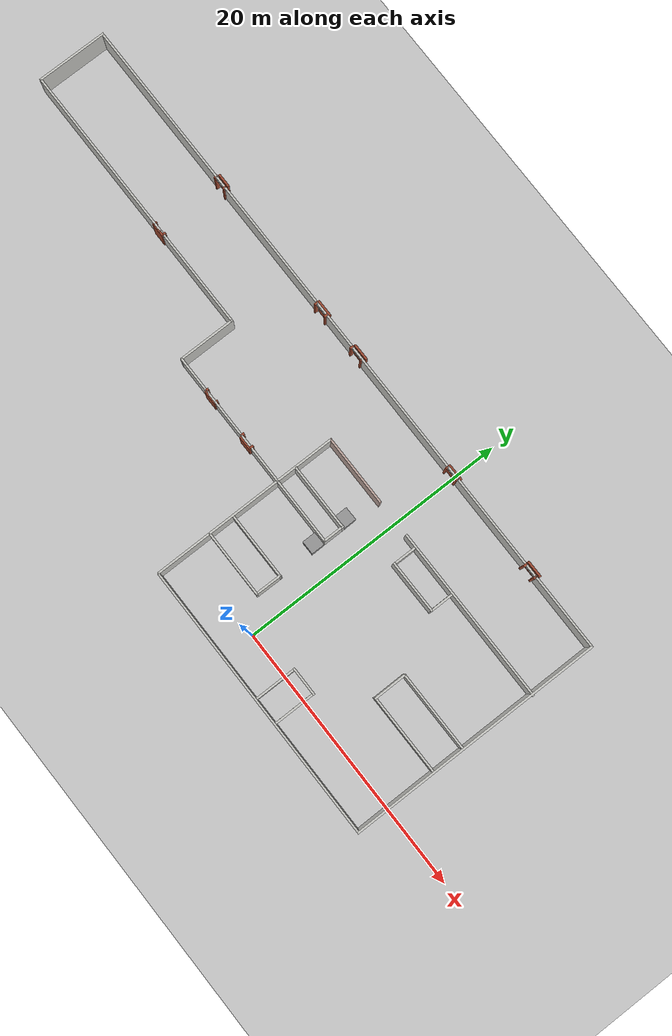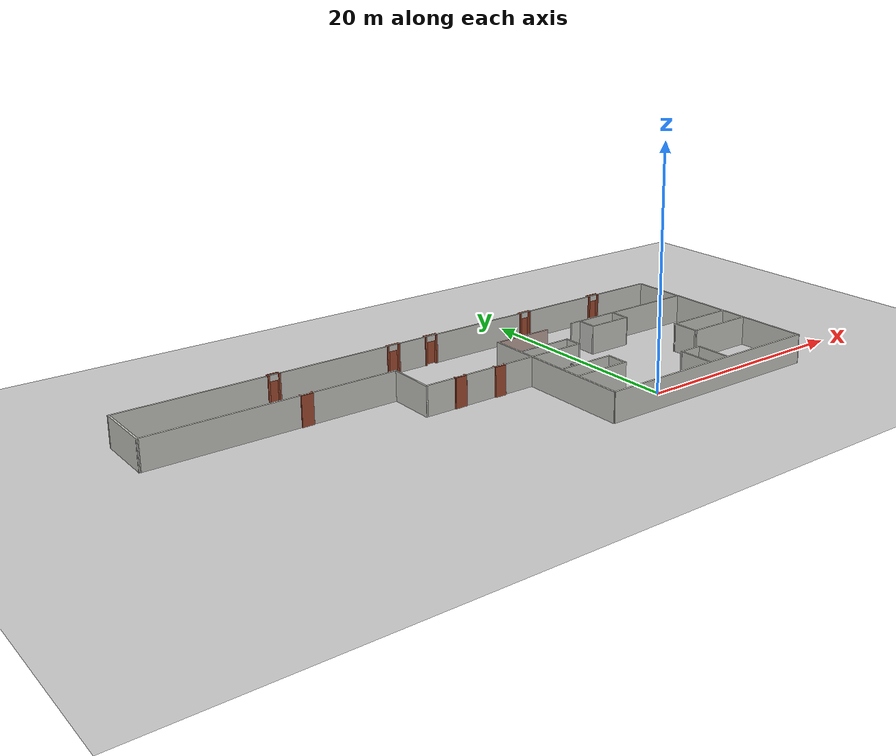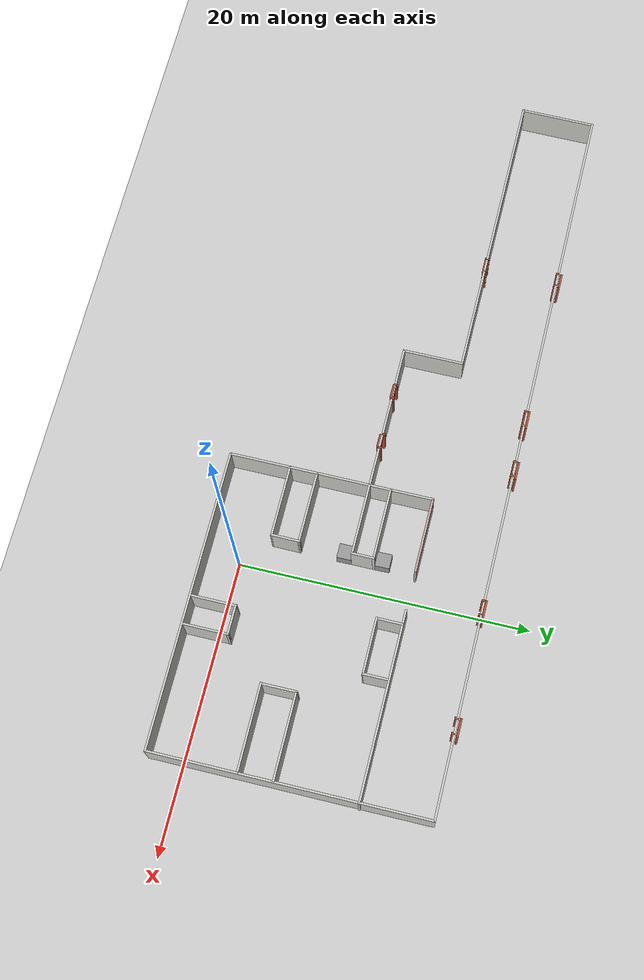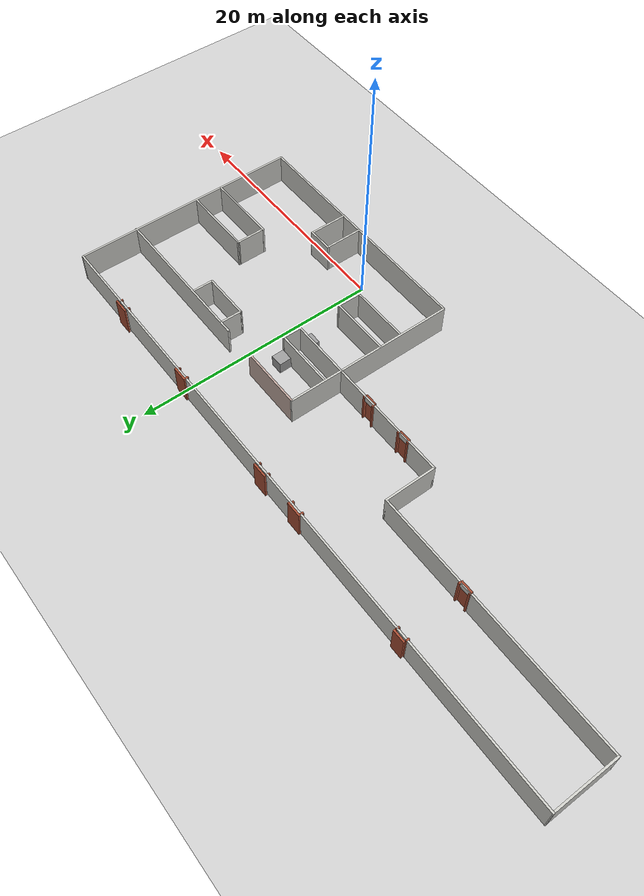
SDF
<sdf version="1.6">
 <world name="default">
  <light name="sun" type="directional">
   <pose>0 0 10 0 -0 0</pose>
   <diffuse>0.8 0.8 0.8 1</diffuse>
   <specular>0.1 0.1 0.1 1</specular>
   <attenuation>
    <range>1000</range>
    <constant>0.9</constant>
    <linear>0.01</linear>
    <quadratic>0.001</quadratic>
   </attenuation>
   <direction>-0.5 0.5 -1</direction>
  </light>
  <model name="ground_plane">
   <static>1</static>
   <link name="link">
    <collision name="collision">
     <geometry><plane><normal>0 0 1</normal><size>100 100</size></plane></geometry>
     <surface><friction><ode><mu>100</mu><mu2>50</mu2></ode></friction></surface>
    </collision>
    <visual name="visual">
     <cast_shadows>0</cast_shadows>
     <geometry><plane><normal>0 0 1</normal><size>100 100</size></plane></geometry>
     <material>
      <script><uri>file://media/materials/scripts/gazebo.material</uri><name>Gazebo/Grey</name></script>
     </material>
    </visual>
   </link>
  </model>
  <gravity>0 0 -9.8</gravity>
  <magnetic_field>6e-06 2.3e-05 -4.2e-05</magnetic_field>
  <atmosphere type="adiabatic"/>
  <physics name="default_physics" default="0" type="ode">
   <max_step_size>0.001</max_step_size>
   <real_time_factor>1</real_time_factor>
   <real_time_update_rate>1000</real_time_update_rate>
  </physics>
  <scene><ambient>0.4 0.4 0.4 1</ambient><background>0.7 0.7 0.7 1</background><shadows>1</shadows></scene>
  <spherical_coordinates>
   <surface_model>EARTH_WGS84</surface_model>
   <latitude_deg>0</latitude_deg>
   <longitude_deg>0</longitude_deg>
   <elevation>0</elevation>
   <heading_deg>0</heading_deg>
  </spherical_coordinates>
  <model name="Koridor2">
   <pose>-11.7102 7.16649 0 0 -0 0</pose>
   <link name="Wall_0">
    <collision name="Wall_0_Collision">
     <geometry><box><size>20.7196 0.15 2.5</size></box></geometry>
     <pose>0 0 1.25 0 -0 0</pose>
    </collision>
    <visual name="Wall_0_Visual">
     <pose>0 0 1.25 0 -0 0</pose>
     <geometry><box><size>20.7196 0.15 2.5</size></box></geometry>
     <material>
      <script><uri>file://media/materials/scripts/gazebo.material</uri><name>Gazebo/CeilingTiled</name></script>
      <ambient>0.760784 0.662745 0.627451 1</ambient>
     </material>
    </visual>
    <pose>15.3339 -9.42948 0 0 -0 0</pose>
   </link>
   <link name="Wall_1">
    <collision name="Wall_1_Collision">
     <geometry><box><size>19 0.15 2.5</size></box></geometry>
     <pose>0 0 1.25 0 -0 0</pose>
    </collision>
    <visual name="Wall_1_Visual">
     <pose>0 0 1.25 0 -0 0</pose>
     <geometry><box><size>19 0.15 2.5</size></box></geometry>
     <material>
      <script><uri>file://media/materials/scripts/gazebo.material</uri><name>Gazebo/CeilingTiled</name></script>
      <ambient>0.760784 0.662745 0.627451 1</ambient>
     </material>
    </visual>
    <pose>25.649 -0.004479 0 0 -0 1.56919</pose>
   </link>
   <link name="Wall_15">
    <collision name="Wall_15_Collision">
     <geometry><box><size>5.25 0.15 2.5</size></box></geometry>
     <pose>0 0 1.25 0 -0 0</pose>
    </collision>
    <visual name="Wall_15_Visual">
     <pose>0 0 1.25 0 -0 0</pose>
     <geometry><box><size>5.25 0.15 2.5</size></box></geometry>
     <material>
      <script><uri>file://media/materials/scripts/gazebo.material</uri><name>Gazebo/Grey</name></script>
      <ambient>0.760784 0.662745 0.627451 1</ambient>
     </material>
    </visual>
    <pose>7.53392 4.57052 0 0 -0 0</pose>
   </link>
   <link name="Wall_17">
    <collision name="Wall_17_Collision">
     <geometry><box><size>13 0.15 2.5</size></box></geometry>
     <pose>0 0 1.25 0 -0 0</pose>
    </collision>
    <visual name="Wall_17_Visual">
     <pose>0 0 1.25 0 -0 0</pose>
     <geometry><box><size>13 0.15 2.5</size></box></geometry>
     <material>
      <script><uri>file://media/materials/scripts/gazebo.material</uri><name>Gazebo/CeilingTiled</name></script>
      <ambient>0.760784 0.662745 0.627451 1</ambient>
     </material>
    </visual>
    <pose>19.2915 4.57081 0 0 -0 0</pose>
   </link>
   <link name="Wall_26">
    <collision name="Wall_26_Collision">
     <geometry><box><size>2.51711 0.15 2.5</size></box></geometry>
     <pose>0 0 1.25 0 -0 0</pose>
    </collision>
    <visual name="Wall_26_Visual">
     <pose>0 0 1.25 0 -0 0</pose>
     <geometry><box><size>2.51711 0.15 2.5</size></box></geometry>
     <material>
      <script><uri>file://media/materials/scripts/gazebo.material</uri><name>Gazebo/CeilingTiled</name></script>
      <ambient>0.760784 0.662745 0.627451 1</ambient>
     </material>
    </visual>
    <pose>19.7361 -2.22038 0 0 0 -1.56573</pose>
   </link>
   <link name="Wall_27">
    <collision name="Wall_27_Collision">
     <geometry><box><size>6.00761 0.15 2.5</size></box></geometry>
     <pose>0 0 1.25 0 -0 0</pose>
    </collision>
    <visual name="Wall_27_Visual">
     <pose>0 0 1.25 0 -0 0</pose>
     <geometry><box><size>6.00761 0.15 2.5</size></box></geometry>
     <material>
      <script><uri>file://media/materials/scripts/gazebo.material</uri><name>Gazebo/CeilingTiled</name></script>
      <ambient>0.760784 0.662745 0.627451 1</ambient>
     </material>
    </visual>
    <pose>22.6558 -3.39376 0 0 -0 0.003434</pose>
   </link>
   <link name="Wall_29">
    <collision name="Wall_29_Collision">
     <geometry><box><size>5.99493 0.15 2.5</size></box></geometry>
     <pose>0 0 1.25 0 -0 0</pose>
    </collision>
    <visual name="Wall_29_Visual">
     <pose>0 0 1.25 0 -0 0</pose>
     <geometry><box><size>5.99493 0.15 2.5</size></box></geometry>
     <material>
      <script><uri>file://media/materials/scripts/gazebo.material</uri><name>Gazebo/CeilingTiled</name></script>
      <ambient>0.760784 0.662745 0.627451 1</ambient>
     </material>
    </visual>
    <pose>22.6526 -1.03445 0 0 -0 0.003441</pose>
   </link>
   <link name="Wall_3">
    <pose>-0.018397 9.42052 0 0 -0 3.14159</pose>
    <visual name="Wall_3_Visual_0">
     <pose>-22.8751 0 1.25 0 -0 0</pose>
     <geometry><box><size>5.74983 0.15 2.5</size></box></geometry>
     <material>
      <script><uri>file://media/materials/scripts/gazebo.material</uri><name>Gazebo/CeilingTiled</name></script>
      <ambient>0.760784 0.662745 0.627451 1</ambient>
     </material>
    </visual>
    <collision name="Wall_3_Collision_0">
     <geometry><box><size>5.74983 0.15 2.5</size></box></geometry>
     <pose>-22.8751 0 1.25 0 -0 0</pose>
    </collision>
    <visual name="Wall_3_Visual_1">
     <pose>-15.5617 0 1.25 0 -0 0</pose>
     <geometry><box><size>7.07695 0.15 2.5</size></box></geometry>
     <material>
      <script><uri>file://media/materials/scripts/gazebo.material</uri><name>Gazebo/CeilingTiled</name></script>
      <ambient>0.760784 0.662745 0.627451 1</ambient>
     </material>
    </visual>
    <collision name="Wall_3_Collision_1">
     <geometry><box><size>7.07695 0.15 2.5</size></box></geometry>
     <pose>-15.5617 0 1.25 0 -0 0</pose>
    </collision>
    <visual name="Wall_3_Visual_2">
     <pose>-6.5969 0 1.25 0 -0 0</pose>
     <geometry><box><size>9.05265 0.15 2.5</size></box></geometry>
     <material>
      <script><uri>file://media/materials/scripts/gazebo.material</uri><name>Gazebo/CeilingTiled</name></script>
      <ambient>0.760784 0.662745 0.627451 1</ambient>
     </material>
    </visual>
    <collision name="Wall_3_Collision_2">
     <geometry><box><size>9.05265 0.15 2.5</size></box></geometry>
     <pose>-6.5969 0 1.25 0 -0 0</pose>
    </collision>
    <visual name="Wall_3_Visual_3">
     <pose>0.23502 0 1.25 0 -0 0</pose>
     <geometry><box><size>2.81118 0.15 2.5</size></box></geometry>
     <material>
      <script><uri>file://media/materials/scripts/gazebo.material</uri><name>Gazebo/CeilingTiled</name></script>
      <ambient>0.760784 0.662745 0.627451 1</ambient>
     </material>
    </visual>
    <collision name="Wall_3_Collision_3">
     <geometry><box><size>2.81118 0.15 2.5</size></box></geometry>
     <pose>0.23502 0 1.25 0 -0 0</pose>
    </collision>
    <visual name="Wall_3_Visual_4">
     <pose>7.47628 0 1.25 0 -0 0</pose>
     <geometry><box><size>9.87134 0.15 2.5</size></box></geometry>
     <material>
      <script><uri>file://media/materials/scripts/gazebo.material</uri><name>Gazebo/CeilingTiled</name></script>
      <ambient>0.760784 0.662745 0.627451 1</ambient>
     </material>
    </visual>
    <collision name="Wall_3_Collision_4">
     <geometry><box><size>9.87134 0.15 2.5</size></box></geometry>
     <pose>7.47628 0 1.25 0 -0 0</pose>
    </collision>
    <visual name="Wall_3_Visual_5">
     <pose>19.531 0 1.25 0 -0 0</pose>
     <geometry><box><size>12.4381 0.15 2.5</size></box></geometry>
     <material>
      <script><uri>file://media/materials/scripts/gazebo.material</uri><name>Gazebo/CeilingTiled</name></script>
      <ambient>0.760784 0.662745 0.627451 1</ambient>
     </material>
    </visual>
    <collision name="Wall_3_Collision_5">
     <geometry><box><size>12.4381 0.15 2.5</size></box></geometry>
     <pose>19.531 0 1.25 0 -0 0</pose>
    </collision>
    <visual name="Wall_3_Visual_6">
     <pose>-19.5502 0 2.25 0 -0 0</pose>
     <geometry><box><size>0.9 0.15 0.5</size></box></geometry>
     <material>
      <script><uri>file://media/materials/scripts/gazebo.material</uri><name>Gazebo/CeilingTiled</name></script>
      <ambient>0.760784 0.662745 0.627451 1</ambient>
     </material>
    </visual>
    <collision name="Wall_3_Collision_6">
     <geometry><box><size>0.9 0.15 0.5</size></box></geometry>
     <pose>-19.5502 0 2.25 0 -0 0</pose>
    </collision>
    <visual name="Wall_3_Visual_7">
     <pose>-11.5732 0 2.25 0 -0 0</pose>
     <geometry><box><size>0.9 0.15 0.5</size></box></geometry>
     <material>
      <script><uri>file://media/materials/scripts/gazebo.material</uri><name>Gazebo/CeilingTiled</name></script>
      <ambient>0.760784 0.662745 0.627451 1</ambient>
     </material>
    </visual>
    <collision name="Wall_3_Collision_7">
     <geometry><box><size>0.9 0.15 0.5</size></box></geometry>
     <pose>-11.5732 0 2.25 0 -0 0</pose>
    </collision>
    <visual name="Wall_3_Visual_8">
     <pose>-1.62057 0 2.25 0 -0 0</pose>
     <geometry><box><size>0.9 0.15 0.5</size></box></geometry>
     <material>
      <script><uri>file://media/materials/scripts/gazebo.material</uri><name>Gazebo/CeilingTiled</name></script>
      <ambient>0.760784 0.662745 0.627451 1</ambient>
     </material>
    </visual>
    <collision name="Wall_3_Collision_8">
     <geometry><box><size>0.9 0.15 0.5</size></box></geometry>
     <pose>-1.62057 0 2.25 0 -0 0</pose>
    </collision>
    <visual name="Wall_3_Visual_9">
     <pose>2.09061 0 2.25 0 -0 0</pose>
     <geometry><box><size>0.9 0.15 0.5</size></box></geometry>
     <material>
      <script><uri>file://media/materials/scripts/gazebo.material</uri><name>Gazebo/CeilingTiled</name></script>
      <ambient>0.760784 0.662745 0.627451 1</ambient>
     </material>
    </visual>
    <collision name="Wall_3_Collision_9">
     <geometry><box><size>0.9 0.15 0.5</size></box></geometry>
     <pose>2.09061 0 2.25 0 -0 0</pose>
    </collision>
    <visual name="Wall_3_Visual_10">
     <pose>12.8619 0 2.25 0 -0 0</pose>
     <geometry><box><size>0.9 0.15 0.5</size></box></geometry>
     <material>
      <script><uri>file://media/materials/scripts/gazebo.material</uri><name>Gazebo/CeilingTiled</name></script>
      <ambient>0.760784 0.662745 0.627451 1</ambient>
     </material>
    </visual>
    <collision name="Wall_3_Collision_10">
     <geometry><box><size>0.9 0.15 0.5</size></box></geometry>
     <pose>12.8619 0 2.25 0 -0 0</pose>
    </collision>
   </link>
   <link name="Wall_31">
    <collision name="Wall_31_Collision">
     <geometry><box><size>3.25 0.15 2.5</size></box></geometry>
     <pose>0 0 1.25 0 -0 0</pose>
    </collision>
    <visual name="Wall_31_Visual">
     <pose>0 0 1.25 0 -0 0</pose>
     <geometry><box><size>3.25 0.15 2.5</size></box></geometry>
     <material>
      <script><uri>file://media/materials/scripts/gazebo.material</uri><name>Gazebo/CeilingTiled</name></script>
      <ambient>0.760784 0.662745 0.627451 1</ambient>
     </material>
    </visual>
    <pose>15.1282 -7.87752 0 0 0 -1.5708</pose>
   </link>
   <link name="Wall_33">
    <collision name="Wall_33_Collision">
     <geometry><box><size>2.14508 0.15 2.5</size></box></geometry>
     <pose>0 0 1.25 0 -0 0</pose>
    </collision>
    <visual name="Wall_33_Visual">
     <pose>0 0 1.25 0 -0 0</pose>
     <geometry><box><size>2.14508 0.15 2.5</size></box></geometry>
     <material>
      <script><uri>file://media/materials/scripts/gazebo.material</uri><name>Gazebo/CeilingTiled</name></script>
      <ambient>0.760784 0.662745 0.627451 1</ambient>
     </material>
    </visual>
    <pose>16.1106 -6.32752 0 0 -0 0</pose>
   </link>
   <link name="Wall_34">
    <collision name="Wall_34_Collision">
     <geometry><box><size>3.25 0.15 2.5</size></box></geometry>
     <pose>0 0 1.25 0 -0 0</pose>
    </collision>
    <visual name="Wall_34_Visual">
     <pose>0 0 1.25 0 -0 0</pose>
     <geometry><box><size>3.25 0.15 2.5</size></box></geometry>
     <material>
      <script><uri>file://media/materials/scripts/gazebo.material</uri><name>Gazebo/CeilingTiled</name></script>
      <ambient>0.760784 0.662745 0.627451 1</ambient>
     </material>
    </visual>
    <pose>17.093 -7.87752 0 0 0 -1.5708</pose>
   </link>
   <link name="Wall_36">
    <collision name="Wall_36_Collision">
     <geometry><box><size>5 0.15 2.5</size></box></geometry>
     <pose>0 0 1.25 0 -0 0</pose>
    </collision>
    <visual name="Wall_36_Visual">
     <pose>0 0 1.25 0 -0 0</pose>
     <geometry><box><size>5 0.15 2.5</size></box></geometry>
     <material>
      <script><uri>file://media/materials/scripts/gazebo.material</uri><name>Gazebo/CeilingTiled</name></script>
      <ambient>0.760784 0.662745 0.627451 1</ambient>
     </material>
    </visual>
    <pose>7.45398 -5.28047 0 0 -0 0</pose>
   </link>
   <link name="Wall_37">
    <collision name="Wall_37_Collision">
     <geometry><box><size>2.025 0.15 2.5</size></box></geometry>
     <pose>0 0 1.25 0 -0 0</pose>
    </collision>
    <visual name="Wall_37_Visual">
     <pose>0 0 1.25 0 -0 0</pose>
     <geometry><box><size>2.025 0.15 2.5</size></box></geometry>
     <material>
      <script><uri>file://media/materials/scripts/gazebo.material</uri><name>Gazebo/CeilingTiled</name></script>
      <ambient>0.760784 0.662745 0.627451 1</ambient>
     </material>
    </visual>
    <pose>9.88654 -4.32788 0 0 -0 1.56273</pose>
   </link>
   <link name="Wall_38">
    <collision name="Wall_38_Collision">
     <geometry><box><size>5 0.15 2.5</size></box></geometry>
     <pose>0 0 1.25 0 -0 0</pose>
    </collision>
    <visual name="Wall_38_Visual">
     <pose>0 0 1.25 0 -0 0</pose>
     <geometry><box><size>5 0.15 2.5</size></box></geometry>
     <material>
      <script><uri>file://media/materials/scripts/gazebo.material</uri><name>Gazebo/CeilingTiled</name></script>
      <ambient>0.760784 0.662745 0.627451 1</ambient>
     </material>
    </visual>
    <pose>7.46911 -3.40553 0 0 -0 3.14159</pose>
   </link>
   <link name="Wall_4">
    <collision name="Wall_4_Collision">
     <geometry><box><size>5.25 0.15 2.5</size></box></geometry>
     <pose>0 0 1.25 0 -0 0</pose>
    </collision>
    <visual name="Wall_4_Visual">
     <pose>0 0 1.25 0 -0 0</pose>
     <geometry><box><size>5.25 0.15 2.5</size></box></geometry>
     <material>
      <script><uri>file://media/materials/scripts/gazebo.material</uri><name>Gazebo/CeilingTiled</name></script>
      <ambient>0.760784 0.662745 0.627451 1</ambient>
     </material>
    </visual>
    <pose>-25.701 6.87052 0 0 0 -1.57673</pose>
   </link>
   <link name="Wall_40">
    <collision name="Wall_40_Collision">
     <geometry><box><size>9.75 0.15 2.5</size></box></geometry>
     <pose>0 0 1.25 0 -0 0</pose>
    </collision>
    <visual name="Wall_40_Visual">
     <pose>0 0 1.25 0 -0 0</pose>
     <geometry><box><size>9.75 0.15 2.5</size></box></geometry>
     <material>
      <script><uri>file://media/materials/scripts/gazebo.material</uri><name>Gazebo/CeilingTiled</name></script>
      <ambient>0.760784 0.662745 0.627451 1</ambient>
     </material>
    </visual>
    <pose>4.98392 -4.57948 0 0 0 -1.5708</pose>
   </link>
   <link name="Wall_42">
    <collision name="Wall_42_Collision">
     <geometry><box><size>5 0.15 2.5</size></box></geometry>
     <pose>0 0 1.25 0 -0 0</pose>
    </collision>
    <visual name="Wall_42_Visual">
     <pose>0 0 1.25 0 -0 0</pose>
     <geometry><box><size>5 0.15 2.5</size></box></geometry>
     <material>
      <script><uri>file://media/materials/scripts/gazebo.material</uri><name>Gazebo/CeilingTiled</name></script>
      <ambient>0.760784 0.662745 0.627451 1</ambient>
     </material>
    </visual>
    <pose>7.44318 0.216596 0 0 -0 0</pose>
   </link>
   <link name="Wall_43">
    <collision name="Wall_43_Collision">
     <geometry><box><size>1.62405 0.15 2.5</size></box></geometry>
     <pose>0 0 1.25 0 -0 0</pose>
    </collision>
    <visual name="Wall_43_Visual">
     <pose>0 0 1.25 0 -0 0</pose>
     <geometry><box><size>1.62405 0.15 2.5</size></box></geometry>
     <material>
      <script><uri>file://media/materials/scripts/gazebo.material</uri><name>Gazebo/CeilingTiled</name></script>
      <ambient>0.760784 0.662745 0.627451 1</ambient>
     </material>
    </visual>
    <pose>9.8833 0.953466 0 0 -0 1.5708</pose>
   </link>
   <link name="Wall_44">
    <collision name="Wall_44_Collision">
     <geometry><box><size>5 0.15 2.5</size></box></geometry>
     <pose>0 0 1.25 0 -0 0</pose>
    </collision>
    <visual name="Wall_44_Visual">
     <pose>0 0 1.25 0 -0 0</pose>
     <geometry><box><size>5 0.15 2.5</size></box></geometry>
     <material>
      <script><uri>file://media/materials/scripts/gazebo.material</uri><name>Gazebo/CeilingTiled</name></script>
      <ambient>0.760784 0.662745 0.627451 1</ambient>
     </material>
    </visual>
    <pose>7.4583 1.67521 0 0 -0 3.14159</pose>
   </link>
   <link name="Wall_47">
    <collision name="Wall_47_Collision">
     <geometry><box><size>0.25 0.15 2.5</size></box></geometry>
     <pose>0 0 1.25 0 -0 0</pose>
    </collision>
    <visual name="Wall_47_Visual">
     <pose>0 0 1.25 0 -0 0</pose>
     <geometry><box><size>0.25 0.15 2.5</size></box></geometry>
     <material>
      <script><uri>file://media/materials/scripts/gazebo.material</uri><name>Gazebo/Bricks</name></script>
      <ambient>1 1 1 1</ambient>
     </material>
    </visual>
    <pose>-13.3306 9.37959 0 0 0 -1.5708</pose>
   </link>
   <link name="Wall_49">
    <collision name="Wall_49_Collision">
     <geometry><box><size>0.25 0.15 2.5</size></box></geometry>
     <pose>0 0 1.25 0 -0 0</pose>
    </collision>
    <visual name="Wall_49_Visual">
     <pose>0 0 1.25 0 -0 0</pose>
     <geometry><box><size>0.25 0.15 2.5</size></box></geometry>
     <material>
      <script><uri>file://media/materials/scripts/gazebo.material</uri><name>Gazebo/Bricks</name></script>
      <ambient>1 1 1 1</ambient>
     </material>
    </visual>
    <pose>-12.4141 9.372 0 0 0 -1.5708</pose>
   </link>
   <link name="Wall_5">
    <pose>-15.4161 4.32052 0 0 -0 0</pose>
    <visual name="Wall_5_Visual_0">
     <pose>-4.13575 0 1.25 0 -0 0</pose>
     <geometry><box><size>12.4785 0.15 2.5</size></box></geometry>
     <material>
      <script><uri>file://media/materials/scripts/gazebo.material</uri><name>Gazebo/CeilingTiled</name></script>
      <ambient>0.760784 0.662745 0.627451 1</ambient>
     </material>
    </visual>
    <collision name="Wall_5_Collision_0">
     <geometry><box><size>12.4785 0.15 2.5</size></box></geometry>
     <pose>-4.13575 0 1.25 0 -0 0</pose>
    </collision>
    <visual name="Wall_5_Visual_1">
     <pose>6.68925 0 1.25 0 -0 0</pose>
     <geometry><box><size>7.37149 0.15 2.5</size></box></geometry>
     <material>
      <script><uri>file://media/materials/scripts/gazebo.material</uri><name>Gazebo/CeilingTiled</name></script>
      <ambient>0.760784 0.662745 0.627451 1</ambient>
     </material>
    </visual>
    <collision name="Wall_5_Collision_1">
     <geometry><box><size>7.37149 0.15 2.5</size></box></geometry>
     <pose>6.68925 0 1.25 0 -0 0</pose>
    </collision>
    <visual name="Wall_5_Visual_2">
     <pose>2.55351 0 2.25 0 -0 0</pose>
     <geometry><box><size>0.9 0.15 0.5</size></box></geometry>
     <material>
      <script><uri>file://media/materials/scripts/gazebo.material</uri><name>Gazebo/CeilingTiled</name></script>
      <ambient>0.760784 0.662745 0.627451 1</ambient>
     </material>
    </visual>
    <collision name="Wall_5_Collision_2">
     <geometry><box><size>0.9 0.15 0.5</size></box></geometry>
     <pose>2.55351 0 2.25 0 -0 0</pose>
    </collision>
   </link>
   <link name="Wall_51">
    <collision name="Wall_51_Collision">
     <geometry><box><size>0.25 0.15 2.5</size></box></geometry>
     <pose>0 0 1.25 0 -0 0</pose>
    </collision>
    <visual name="Wall_51_Visual">
     <pose>0 0 1.25 0 -0 0</pose>
     <geometry><box><size>0.25 0.15 2.5</size></box></geometry>
     <material>
      <script><uri>file://media/materials/scripts/gazebo.material</uri><name>Gazebo/Bricks</name></script>
      <ambient>1 1 1 1</ambient>
     </material>
    </visual>
    <pose>-12.4065 4.3756 0 0 -0 1.5708</pose>
   </link>
   <link name="Wall_53">
    <collision name="Wall_53_Collision">
     <geometry><box><size>0.25 0.15 2.5</size></box></geometry>
     <pose>0 0 1.25 0 -0 0</pose>
    </collision>
    <visual name="Wall_53_Visual">
     <pose>0 0 1.25 0 -0 0</pose>
     <geometry><box><size>0.25 0.15 2.5</size></box></geometry>
     <material>
      <script><uri>file://media/materials/scripts/gazebo.material</uri><name>Gazebo/Bricks</name></script>
      <ambient>1 1 1 1</ambient>
     </material>
    </visual>
    <pose>-13.3366 4.35291 0 0 -0 1.5708</pose>
   </link>
   <link name="Wall_55">
    <collision name="Wall_55_Collision">
     <geometry><box><size>0.25 0.15 2.5</size></box></geometry>
     <pose>0 0 1.25 0 -0 0</pose>
    </collision>
    <visual name="Wall_55_Visual">
     <pose>0 0 1.25 0 -0 0</pose>
     <geometry><box><size>0.25 0.15 2.5</size></box></geometry>
     <material>
      <script><uri>file://media/materials/scripts/gazebo.material</uri><name>Gazebo/Bricks</name></script>
      <ambient>1 1 1 1</ambient>
     </material>
    </visual>
    <pose>-2.63083 9.33965 0 0 0 -1.5708</pose>
   </link>
   <link name="Wall_57">
    <collision name="Wall_57_Collision">
     <geometry><box><size>0.25 0.15 2.5</size></box></geometry>
     <pose>0 0 1.25 0 -0 0</pose>
    </collision>
    <visual name="Wall_57_Visual">
     <pose>0 0 1.25 0 -0 0</pose>
     <geometry><box><size>0.25 0.15 2.5</size></box></geometry>
     <material>
      <script><uri>file://media/materials/scripts/gazebo.material</uri><name>Gazebo/Bricks</name></script>
      <ambient>1 1 1 1</ambient>
     </material>
    </visual>
    <pose>-1.60474 9.33965 0 0 0 -1.5708</pose>
   </link>
   <link name="Wall_59">
    <collision name="Wall_59_Collision">
     <geometry><box><size>0.25 0.15 2.5</size></box></geometry>
     <pose>0 0 1.25 0 -0 0</pose>
    </collision>
    <visual name="Wall_59_Visual">
     <pose>0 0 1.25 0 -0 0</pose>
     <geometry><box><size>0.25 0.15 2.5</size></box></geometry>
     <material>
      <script><uri>file://media/materials/scripts/gazebo.material</uri><name>Gazebo/Bricks</name></script>
      <ambient>1 1 1 1</ambient>
     </material>
    </visual>
    <pose>1.08222 9.36574 0 0 0 -1.5708</pose>
   </link>
   <link name="Wall_6">
    <collision name="Wall_6_Collision">
     <geometry><box><size>4.25 0.15 2.5</size></box></geometry>
     <pose>0 0 1.25 0 -0 0</pose>
    </collision>
    <visual name="Wall_6_Visual">
     <pose>0 0 1.25 0 -0 0</pose>
     <geometry><box><size>4.25 0.15 2.5</size></box></geometry>
     <material>
      <script><uri>file://media/materials/scripts/gazebo.material</uri><name>Gazebo/CeilingTiled</name></script>
      <ambient>0.760784 0.662745 0.627451 1</ambient>
     </material>
    </visual>
    <pose>-5.11608 2.27052 0 0 0 -1.5708</pose>
   </link>
   <link name="Wall_61">
    <collision name="Wall_61_Collision">
     <geometry><box><size>0.25 0.15 2.5</size></box></geometry>
     <pose>0 0 1.25 0 -0 0</pose>
    </collision>
    <visual name="Wall_61_Visual">
     <pose>0 0 1.25 0 -0 0</pose>
     <geometry><box><size>0.25 0.15 2.5</size></box></geometry>
     <material>
      <script><uri>file://media/materials/scripts/gazebo.material</uri><name>Gazebo/Bricks</name></script>
      <ambient>1 1 1 1</ambient>
     </material>
    </visual>
    <pose>2.10831 9.36574 0 0 0 -1.5708</pose>
   </link>
   <link name="Wall_63">
    <collision name="Wall_63_Collision">
     <geometry><box><size>0.25 0.15 2.5</size></box></geometry>
     <pose>0 0 1.25 0 -0 0</pose>
    </collision>
    <visual name="Wall_63_Visual">
     <pose>0 0 1.25 0 -0 0</pose>
     <geometry><box><size>0.25 0.15 2.5</size></box></geometry>
     <material>
      <script><uri>file://media/materials/scripts/gazebo.material</uri><name>Gazebo/Bricks</name></script>
      <ambient>1 1 1 1</ambient>
     </material>
    </visual>
    <pose>11.0387 9.35704 0 0 0 -1.5708</pose>
   </link>
   <link name="Wall_66">
    <collision name="Wall_66_Collision">
     <geometry><box><size>0.25 0.15 2.5</size></box></geometry>
     <pose>0 0 1.25 0 -0 0</pose>
    </collision>
    <visual name="Wall_66_Visual">
     <pose>0 0 1.25 0 -0 0</pose>
     <geometry><box><size>0.25 0.15 2.5</size></box></geometry>
     <material>
      <script><uri>file://media/materials/scripts/gazebo.material</uri><name>Gazebo/Bricks</name></script>
      <ambient>1 1 1 1</ambient>
     </material>
    </visual>
    <pose>12.0213 9.35704 0 0 0 -1.5708</pose>
   </link>
   <link name="Wall_68">
    <collision name="Wall_68_Collision">
     <geometry><box><size>0.25 0.15 2.5</size></box></geometry>
     <pose>0 0 1.25 0 -0 0</pose>
    </collision>
    <visual name="Wall_68_Visual">
     <pose>0 0 1.25 0 -0 0</pose>
     <geometry><box><size>0.25 0.15 2.5</size></box></geometry>
     <material>
      <script><uri>file://media/materials/scripts/gazebo.material</uri><name>Gazebo/Bricks</name></script>
      <ambient>1 1 1 1</ambient>
     </material>
    </visual>
    <pose>19.0213 9.34835 0 0 0 -1.5708</pose>
   </link>
   <link name="Wall_70">
    <collision name="Wall_70_Collision">
     <geometry><box><size>0.25 0.15 2.5</size></box></geometry>
     <pose>0 0 1.25 0 -0 0</pose>
    </collision>
    <visual name="Wall_70_Visual">
     <pose>0 0 1.25 0 -0 0</pose>
     <geometry><box><size>0.25 0.15 2.5</size></box></geometry>
     <material>
      <script><uri>file://media/materials/scripts/gazebo.material</uri><name>Gazebo/Bricks</name></script>
      <ambient>1 1 1 1</ambient>
     </material>
    </visual>
    <pose>20.0213 9.34835 0 0 0 -1.5708</pose>
   </link>
   <link name="Wall_72">
    <collision name="Wall_72_Collision">
     <geometry><box><size>0.25 0.15 2.5</size></box></geometry>
     <pose>0 0 1.25 0 -0 0</pose>
    </collision>
    <visual name="Wall_72_Visual">
     <pose>0 0 1.25 0 -0 0</pose>
     <geometry><box><size>0.25 0.15 2.5</size></box></geometry>
     <material>
      <script><uri>file://media/materials/scripts/gazebo.material</uri><name>Gazebo/Bricks</name></script>
      <ambient>1 1 1 1</ambient>
     </material>
    </visual>
    <pose>-2.49565 0.260325 0 0 -0 1.5708</pose>
   </link>
   <link name="Wall_74">
    <collision name="Wall_74_Collision">
     <geometry><box><size>0.25 0.15 2.5</size></box></geometry>
     <pose>0 0 1.25 0 -0 0</pose>
    </collision>
    <visual name="Wall_74_Visual">
     <pose>0 0 1.25 0 -0 0</pose>
     <geometry><box><size>0.25 0.15 2.5</size></box></geometry>
     <material>
      <script><uri>file://media/materials/scripts/gazebo.material</uri><name>Gazebo/Bricks</name></script>
      <ambient>1 1 1 1</ambient>
     </material>
    </visual>
    <pose>-1.50665 0.260325 0 0 -0 1.5708</pose>
   </link>
   <link name="Wall_76">
    <collision name="Wall_76_Collision">
     <geometry><box><size>0.25 0.15 2.5</size></box></geometry>
     <pose>0 0 1.25 0 -0 0</pose>
    </collision>
    <visual name="Wall_76_Visual">
     <pose>0 0 1.25 0 -0 0</pose>
     <geometry><box><size>0.25 0.15 2.5</size></box></geometry>
     <material>
      <script><uri>file://media/materials/scripts/gazebo.material</uri><name>Gazebo/Bricks</name></script>
      <ambient>1 1 1 1</ambient>
     </material>
    </visual>
    <pose>1.23035 0.294825 0 0 -0 1.5708</pose>
   </link>
   <link name="Wall_78">
    <collision name="Wall_78_Collision">
     <geometry><box><size>0.25 0.15 2.5</size></box></geometry>
     <pose>0 0 1.25 0 -0 0</pose>
    </collision>
    <visual name="Wall_78_Visual">
     <pose>0 0 1.25 0 -0 0</pose>
     <geometry><box><size>0.25 0.15 2.5</size></box></geometry>
     <material>
      <script><uri>file://media/materials/scripts/gazebo.material</uri><name>Gazebo/Bricks</name></script>
      <ambient>1 1 1 1</ambient>
     </material>
    </visual>
    <pose>2.21935 0.260325 0 0 -0 1.5708</pose>
   </link>
   <link name="Wall_8">
    <pose>-0.066081 0.220521 0 0 -0 0</pose>
    <visual name="Wall_8_Visual_0">
     <pose>-3.75913 0 1.25 0 -0 0</pose>
     <geometry><box><size>2.73175 0.15 2.5</size></box></geometry>
     <material>
      <script><uri>file://media/materials/scripts/gazebo.material</uri><name>Gazebo/CeilingTiled</name></script>
      <ambient>0.760784 0.662745 0.627451 1</ambient>
     </material>
    </visual>
    <collision name="Wall_8_Collision_0">
     <geometry><box><size>2.73175 0.15 2.5</size></box></geometry>
     <pose>-3.75913 0 1.25 0 -0 0</pose>
    </collision>
    <visual name="Wall_8_Visual_1">
     <pose>-0.087867 0 1.25 0 -0 0</pose>
     <geometry><box><size>2.81077 0.15 2.5</size></box></geometry>
     <material>
      <script><uri>file://media/materials/scripts/gazebo.material</uri><name>Gazebo/CeilingTiled</name></script>
      <ambient>0.760784 0.662745 0.627451 1</ambient>
     </material>
    </visual>
    <collision name="Wall_8_Collision_1">
     <geometry><box><size>2.81077 0.15 2.5</size></box></geometry>
     <pose>-0.087867 0 1.25 0 -0 0</pose>
    </collision>
    <visual name="Wall_8_Visual_2">
     <pose>3.67126 0 1.25 0 -0 0</pose>
     <geometry><box><size>2.90748 0.15 2.5</size></box></geometry>
     <material>
      <script><uri>file://media/materials/scripts/gazebo.material</uri><name>Gazebo/CeilingTiled</name></script>
      <ambient>0.760784 0.662745 0.627451 1</ambient>
     </material>
    </visual>
    <collision name="Wall_8_Collision_2">
     <geometry><box><size>2.90748 0.15 2.5</size></box></geometry>
     <pose>3.67126 0 1.25 0 -0 0</pose>
    </collision>
    <visual name="Wall_8_Visual_3">
     <pose>-1.94325 0 2.25 0 -0 0</pose>
     <geometry><box><size>0.9 0.15 0.5</size></box></geometry>
     <material>
      <script><uri>file://media/materials/scripts/gazebo.material</uri><name>Gazebo/CeilingTiled</name></script>
      <ambient>0.760784 0.662745 0.627451 1</ambient>
     </material>
    </visual>
    <collision name="Wall_8_Collision_3">
     <geometry><box><size>0.9 0.15 0.5</size></box></geometry>
     <pose>-1.94325 0 2.25 0 -0 0</pose>
    </collision>
    <visual name="Wall_8_Visual_4">
     <pose>1.76752 0 2.25 0 -0 0</pose>
     <geometry><box><size>0.9 0.15 0.5</size></box></geometry>
     <material>
      <script><uri>file://media/materials/scripts/gazebo.material</uri><name>Gazebo/CeilingTiled</name></script>
      <ambient>0.760784 0.662745 0.627451 1</ambient>
     </material>
    </visual>
    <collision name="Wall_8_Collision_4">
     <geometry><box><size>0.9 0.15 0.5</size></box></geometry>
     <pose>1.76752 0 2.25 0 -0 0</pose>
    </collision>
   </link>
   <link name="Wall_9">
    <collision name="Wall_9_Collision">
     <geometry><box><size>4.5 0.15 2.5</size></box></geometry>
     <pose>0 0 1.25 0 -0 0</pose>
    </collision>
    <visual name="Wall_9_Visual">
     <pose>0 0 1.25 0 -0 0</pose>
     <geometry><box><size>4.5 0.15 2.5</size></box></geometry>
     <material>
      <script><uri>file://media/materials/scripts/gazebo.material</uri><name>Gazebo/CeilingTiled</name></script>
      <ambient>0.760784 0.662745 0.627451 1</ambient>
     </material>
    </visual>
    <pose>4.98392 2.39552 0 0 -0 1.5708</pose>
   </link>
   <static>1</static>
  </model>
  <model name="Untitled">
   <pose>3.98775 10.8542 0 0 -0 0</pose>
   <link name="Wall_14">
    <collision name="Wall_14_Collision">
     <geometry><box><size>3.946 0.15 2.5</size></box></geometry>
     <pose>0 0 1.25 0 -0 0</pose>
    </collision>
    <visual name="Wall_14_Visual">
     <pose>0 0 1.25 0 -0 0</pose>
     <geometry><box><size>3.946 0.15 2.5</size></box></geometry>
     <material>
      <script><uri>file://media/materials/scripts/gazebo.material</uri><name>Gazebo/CeilingTiled</name></script>
      <ambient>0.760784 0.662745 0.627451 1</ambient>
     </material>
    </visual>
    <pose>1.1e-05 -0.854512 0 0 -0 0.004545</pose>
   </link>
   <link name="Wall_17">
    <collision name="Wall_17_Collision">
     <geometry><box><size>1.75 0.15 2.5</size></box></geometry>
     <pose>0 0 1.25 0 -0 0</pose>
    </collision>
    <visual name="Wall_17_Visual">
     <pose>0 0 1.25 0 -0 0</pose>
     <geometry><box><size>1.75 0.15 2.5</size></box></geometry>
     <material>
      <script><uri>file://media/materials/scripts/gazebo.material</uri><name>Gazebo/CeilingTiled</name></script>
      <ambient>0.760784 0.662745 0.627451 1</ambient>
     </material>
    </visual>
    <pose>1.89799 -0.045885 0 0 -0 1.5708</pose>
   </link>
   <link name="Wall_5">
    <collision name="Wall_5_Collision">
     <geometry><box><size>1.80552 0.15 2.5</size></box></geometry>
     <pose>0 0 1.25 0 -0 0</pose>
    </collision>
    <visual name="Wall_5_Visual">
     <pose>0 0 1.25 0 -0 0</pose>
     <geometry><box><size>1.80552 0.15 2.5</size></box></geometry>
     <material>
      <script><uri>file://media/materials/scripts/gazebo.material</uri><name>Gazebo/CeilingTiled</name></script>
      <ambient>0.760784 0.662745 0.627451 1</ambient>
     </material>
    </visual>
    <pose>-1.89396 0.035367 0 0 0 -1.57564</pose>
   </link>
   <static>1</static>
  </model>
  <model name="Koridor3">
   <pose>-8.3027 12.039 0 0 -0 0</pose>
   <link name="Wall_13">
    <collision name="Wall_13_Collision">
     <geometry><box><size>1 0.15 2.5</size></box></geometry>
     <pose>0 0 1.25 0 -0 0</pose>
    </collision>
    <visual name="Wall_13_Visual">
     <pose>0 0 1.25 0 -0 0</pose>
     <geometry><box><size>1 0.15 2.5</size></box></geometry>
     <material>
      <script><uri>file://media/materials/scripts/gazebo.material</uri><name>Gazebo/Bricks</name></script>
      <ambient>1 1 1 1</ambient>
     </material>
    </visual>
    <pose>-16.2499 4.77379 0 0 -0 0</pose>
   </link>
   <link name="Wall_22">
    <collision name="Wall_22_Collision">
     <geometry><box><size>1 0.15 2.5</size></box></geometry>
     <pose>0 0 1.25 0 -0 0</pose>
    </collision>
    <visual name="Wall_22_Visual">
     <pose>0 0 1.25 0 -0 0</pose>
     <geometry><box><size>1 0.15 2.5</size></box></geometry>
     <material>
      <script><uri>file://media/materials/scripts/gazebo.material</uri><name>Gazebo/Bricks</name></script>
      <ambient>1 1 1 1</ambient>
     </material>
    </visual>
    <pose>-16.2945 -0.631699 0 0 -0 0</pose>
   </link>
   <link name="Wall_28">
    <collision name="Wall_28_Collision">
     <geometry><box><size>1 0.15 2.5</size></box></geometry>
     <pose>0 0 1.25 0 -0 0</pose>
    </collision>
    <visual name="Wall_28_Visual">
     <pose>0 0 1.25 0 -0 0</pose>
     <geometry><box><size>1 0.15 2.5</size></box></geometry>
     <material>
      <script><uri>file://media/materials/scripts/gazebo.material</uri><name>Gazebo/Bricks</name></script>
      <ambient>1 1 1 1</ambient>
     </material>
    </visual>
    <pose>-5.39497 -4.73148 0 0 -0 0</pose>
   </link>
   <link name="Wall_30">
    <collision name="Wall_30_Collision">
     <geometry><box><size>1.25 0.15 2.5</size></box></geometry>
     <pose>0 0 1.25 0 -0 0</pose>
    </collision>
    <visual name="Wall_30_Visual">
     <pose>0 0 1.25 0 -0 0</pose>
     <geometry><box><size>1.25 0.15 2.5</size></box></geometry>
     <material>
      <script><uri>file://media/materials/scripts/gazebo.material</uri><name>Gazebo/Bricks</name></script>
      <ambient>1 1 1 1</ambient>
     </material>
    </visual>
    <pose>-5.4717 4.68979 0 0 -0 0</pose>
   </link>
   <link name="Wall_32">
    <collision name="Wall_32_Collision">
     <geometry><box><size>1.25 0.15 2.5</size></box></geometry>
     <pose>0 0 1.25 0 -0 0</pose>
    </collision>
    <visual name="Wall_32_Visual">
     <pose>0 0 1.25 0 -0 0</pose>
     <geometry><box><size>1.25 0.15 2.5</size></box></geometry>
     <material>
      <script><uri>file://media/materials/scripts/gazebo.material</uri><name>Gazebo/Bricks</name></script>
      <ambient>1 1 1 1</ambient>
     </material>
    </visual>
    <pose>-1.71921 4.75509 0 0 -0 0</pose>
   </link>
   <link name="Wall_34">
    <collision name="Wall_34_Collision">
     <geometry><box><size>1 0.15 2.5</size></box></geometry>
     <pose>0 0 1.25 0 -0 0</pose>
    </collision>
    <visual name="Wall_34_Visual">
     <pose>0 0 1.25 0 -0 0</pose>
     <geometry><box><size>1 0.15 2.5</size></box></geometry>
     <material>
      <script><uri>file://media/materials/scripts/gazebo.material</uri><name>Gazebo/Bricks</name></script>
      <ambient>1 1 1 1</ambient>
     </material>
    </visual>
    <pose>-1.66722 -4.77379 0 0 -0 0</pose>
   </link>
   <link name="Wall_36">
    <collision name="Wall_36_Collision">
     <geometry><box><size>1.25 0.15 2.5</size></box></geometry>
     <pose>0 0 1.25 0 -0 0</pose>
    </collision>
    <visual name="Wall_36_Visual">
     <pose>0 0 1.25 0 -0 0</pose>
     <geometry><box><size>1.25 0.15 2.5</size></box></geometry>
     <material>
      <script><uri>file://media/materials/scripts/gazebo.material</uri><name>Gazebo/Bricks</name></script>
      <ambient>1 1 1 1</ambient>
     </material>
    </visual>
    <pose>8.19975 4.68013 0 0 -0 0</pose>
   </link>
   <link name="Wall_38">
    <collision name="Wall_38_Collision">
     <geometry><box><size>1.25 0.15 2.5</size></box></geometry>
     <pose>0 0 1.25 0 -0 0</pose>
    </collision>
    <visual name="Wall_38_Visual">
     <pose>0 0 1.25 0 -0 0</pose>
     <geometry><box><size>1.25 0.15 2.5</size></box></geometry>
     <material>
      <script><uri>file://media/materials/scripts/gazebo.material</uri><name>Gazebo/Bricks</name></script>
      <ambient>1 1 1 1</ambient>
     </material>
    </visual>
    <pose>16.1695 4.77205 0 0 -0 0</pose>
   </link>
   <static>1</static>
  </model>
  <model name="unit_box_0">
   <pose>-2.25858 9.42661 0.499995 0 1e-05 0.015402</pose>
   <link name="link">
    <inertial>
     <mass>1</mass>
     <inertia>
      <ixx>0.166667</ixx>
      <ixy>0</ixy>
      <ixz>0</ixz>
      <iyy>0.166667</iyy>
      <iyz>0</iyz>
      <izz>0.166667</izz>
     </inertia>
    </inertial>
    <collision name="collision"><geometry><box><size>1 1 1</size></box></geometry></collision>
    <visual name="visual">
     <geometry><box><size>1 1 1</size></box></geometry>
     <material>
      <script><name>Gazebo/Grey</name><uri>file://media/materials/scripts/gazebo.material</uri></script>
     </material>
    </visual>
   </link>
  </model>
  <model name="unit_box_1">
   <pose>-2.23723 6.80799 0.499995 0 1e-05 -0.000204</pose>
   <link name="link">
    <inertial>
     <mass>1</mass>
     <inertia>
      <ixx>0.166667</ixx>
      <ixy>0</ixy>
      <ixz>0</ixz>
      <iyy>0.166667</iyy>
      <iyz>0</iyz>
      <izz>0.166667</izz>
     </inertia>
    </inertial>
    <collision name="collision"><geometry><box><size>1 1 1</size></box></geometry></collision>
    <visual name="visual">
     <geometry><box><size>1 1 1</size></box></geometry>
     <material>
      <script><name>Gazebo/Grey</name><uri>file://media/materials/scripts/gazebo.material</uri></script>
     </material>
    </visual>
   </link>
  </model>
 </world>
</sdf>
